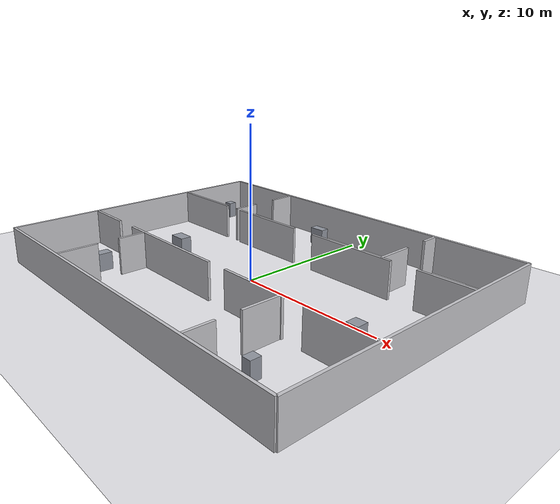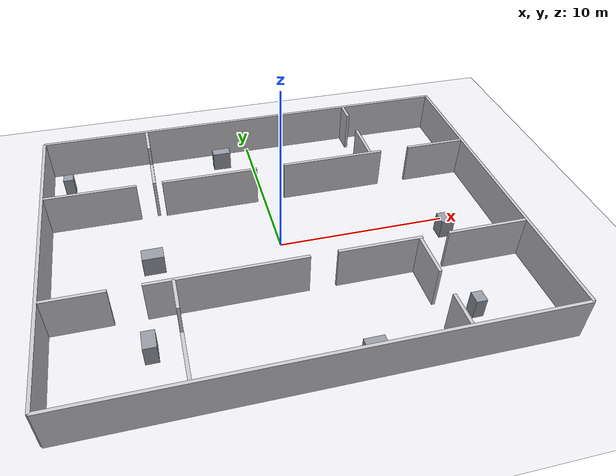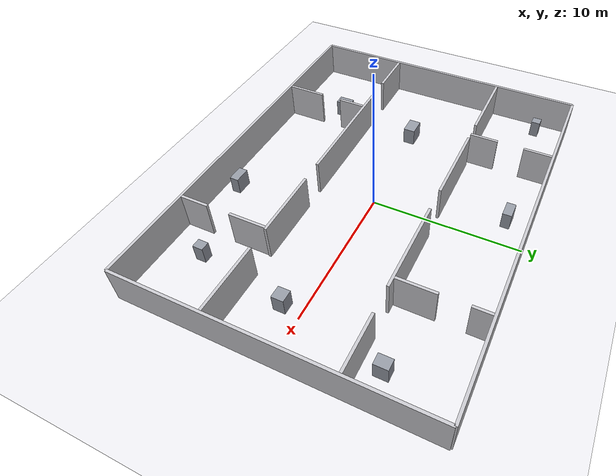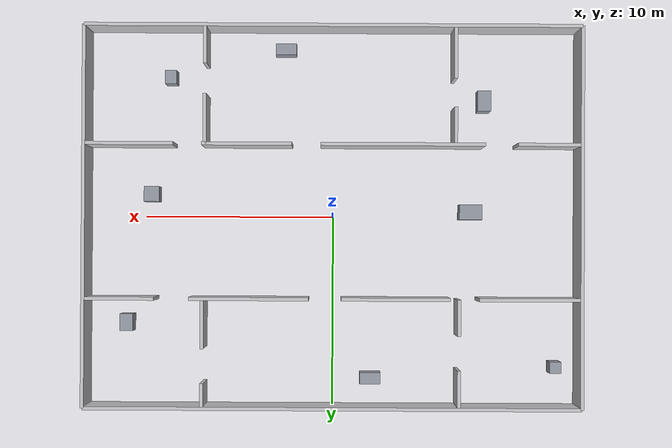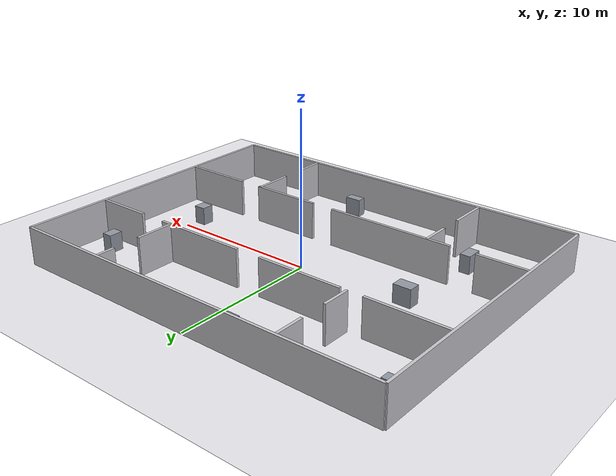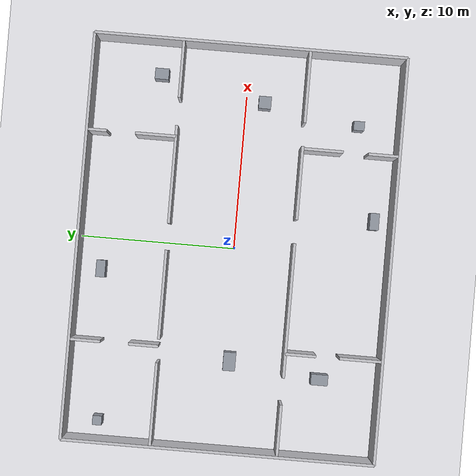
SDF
<?xml version="1.0"?>
<sdf version="1.9"><world name="new_room_world">
<plugin filename="gz-sim-physics-system" name="gz::sim::systems::Physics"/><plugin filename="gz-sim-user-commands-system" name="gz::sim::systems::UserCommands"/><plugin filename="gz-sim-scene-broadcaster-system" name="gz::sim::systems::SceneBroadcaster"/><plugin filename="gz-sim-sensors-system" name="gz::sim::systems::Sensors"><render_engine>ogre2</render_engine></plugin><plugin filename="gz-sim-imu-system" name="gz::sim::systems::Imu"/>
<physics name="new_room_realtime" type="ignored"><max_step_size>0.001</max_step_size><real_time_factor>1</real_time_factor></physics><gravity>0 0 -9.8</gravity><scene><ambient>0.85 0.85 0.87 1</ambient><background>0.68 0.68 0.71 1</background><shadows>false</shadows></scene><light name="sun" type="directional"><cast_shadows>false</cast_shadows><pose>0 0 10 0 0 0</pose><diffuse>0.95 0.95 0.95 1</diffuse><direction>-0.3 0.2 -1</direction></light>
<model name="new_room_ground"><static>true</static><link name="ground_link"><collision name="ground_collision"><geometry><plane><normal>0 0 1</normal><size>40 32</size></plane></geometry></collision><visual name="ground_visual"><geometry><plane><normal>0 0 1</normal><size>40 32</size></plane></geometry><material><ambient>0.92 0.92 0.94 1</ambient><diffuse>0.92 0.92 0.94 1</diffuse></material></visual></link></model>
<model name="mini_hospital_structure"><static>true</static><link name="structure">
<collision name="mx048_c000"><pose>0 10 1.25 0 0 0</pose><geometry><box><size>26 0.18 2.5</size></box></geometry></collision><visual name="mx048_v000"><pose>0 10 1.25 0 0 0</pose><geometry><box><size>26 0.18 2.5</size></box></geometry><material><ambient>0.78 0.78 0.80 1</ambient><diffuse>0.78 0.78 0.80 1</diffuse></material></visual>
<collision name="mx048_c001"><pose>0 -10 1.25 0 0 0</pose><geometry><box><size>26 0.18 2.5</size></box></geometry></collision><visual name="mx048_v001"><pose>0 -10 1.25 0 0 0</pose><geometry><box><size>26 0.18 2.5</size></box></geometry><material><ambient>0.78 0.78 0.80 1</ambient><diffuse>0.78 0.78 0.80 1</diffuse></material></visual>
<collision name="mx048_c002"><pose>-13 0 1.25 0 0 0</pose><geometry><box><size>0.18 20 2.5</size></box></geometry></collision><visual name="mx048_v002"><pose>-13 0 1.25 0 0 0</pose><geometry><box><size>0.18 20 2.5</size></box></geometry><material><ambient>0.78 0.78 0.80 1</ambient><diffuse>0.78 0.78 0.80 1</diffuse></material></visual>
<collision name="mx048_c003"><pose>13 0 1.25 0 0 0</pose><geometry><box><size>0.18 20 2.5</size></box></geometry></collision><visual name="mx048_v003"><pose>13 0 1.25 0 0 0</pose><geometry><box><size>0.18 20 2.5</size></box></geometry><material><ambient>0.78 0.78 0.80 1</ambient><diffuse>0.78 0.78 0.80 1</diffuse></material></visual>
<collision name="mx048_c004"><pose>-10.28 4.3 1.25 0 0 0</pose><geometry><box><size>5.26 0.18 2.5</size></box></geometry></collision><visual name="mx048_v004"><pose>-10.28 4.3 1.25 0 0 0</pose><geometry><box><size>5.26 0.18 2.5</size></box></geometry><material><ambient>0.78 0.78 0.80 1</ambient><diffuse>0.78 0.78 0.80 1</diffuse></material></visual>
<collision name="mx048_c005"><pose>-3.3 4.3 1.25 0 0 0</pose><geometry><box><size>5.7 0.18 2.5</size></box></geometry></collision><visual name="mx048_v005"><pose>-3.3 4.3 1.25 0 0 0</pose><geometry><box><size>5.7 0.18 2.5</size></box></geometry><material><ambient>0.78 0.78 0.80 1</ambient><diffuse>0.78 0.78 0.80 1</diffuse></material></visual>
<collision name="mx048_c006"><pose>4.375 4.3 1.25 0 0 0</pose><geometry><box><size>6.25 0.18 2.5</size></box></geometry></collision><visual name="mx048_v006"><pose>4.375 4.3 1.25 0 0 0</pose><geometry><box><size>6.25 0.18 2.5</size></box></geometry><material><ambient>0.78 0.78 0.80 1</ambient><diffuse>0.78 0.78 0.80 1</diffuse></material></visual>
<collision name="mx048_c007"><pose>11.105 4.3 1.25 0 0 0</pose><geometry><box><size>3.61 0.18 2.5</size></box></geometry></collision><visual name="mx048_v007"><pose>11.105 4.3 1.25 0 0 0</pose><geometry><box><size>3.61 0.18 2.5</size></box></geometry><material><ambient>0.78 0.78 0.80 1</ambient><diffuse>0.78 0.78 0.80 1</diffuse></material></visual>
<collision name="mx048_c008"><pose>-11.28 -3.8 1.25 0 0 0</pose><geometry><box><size>3.26 0.18 2.5</size></box></geometry></collision><visual name="mx048_v008"><pose>-11.28 -3.8 1.25 0 0 0</pose><geometry><box><size>3.26 0.18 2.5</size></box></geometry><material><ambient>0.78 0.78 0.80 1</ambient><diffuse>0.78 0.78 0.80 1</diffuse></material></visual>
<collision name="mx048_c009"><pose>-3.65 -3.8 1.25 0 0 0</pose><geometry><box><size>8.6 0.18 2.5</size></box></geometry></collision><visual name="mx048_v009"><pose>-3.65 -3.8 1.25 0 0 0</pose><geometry><box><size>8.6 0.18 2.5</size></box></geometry><material><ambient>0.78 0.78 0.80 1</ambient><diffuse>0.78 0.78 0.80 1</diffuse></material></visual>
<collision name="mx048_c010"><pose>4.5 -3.8 1.25 0 0 0</pose><geometry><box><size>4.7 0.18 2.5</size></box></geometry></collision><visual name="mx048_v010"><pose>4.5 -3.8 1.25 0 0 0</pose><geometry><box><size>4.7 0.18 2.5</size></box></geometry><material><ambient>0.78 0.78 0.80 1</ambient><diffuse>0.78 0.78 0.80 1</diffuse></material></visual>
<collision name="mx048_c011"><pose>10.63 -3.8 1.25 0 0 0</pose><geometry><box><size>4.56 0.18 2.5</size></box></geometry></collision><visual name="mx048_v011"><pose>10.63 -3.8 1.25 0 0 0</pose><geometry><box><size>4.56 0.18 2.5</size></box></geometry><material><ambient>0.78 0.78 0.80 1</ambient><diffuse>0.78 0.78 0.80 1</diffuse></material></visual>
<collision name="mx048_c012"><pose>-6.6 5.25 1.25 0 0 0</pose><geometry><box><size>0.18 1.9 2.5</size></box></geometry></collision><visual name="mx048_v012"><pose>-6.6 5.25 1.25 0 0 0</pose><geometry><box><size>0.18 1.9 2.5</size></box></geometry><material><ambient>0.78 0.78 0.80 1</ambient><diffuse>0.78 0.78 0.80 1</diffuse></material></visual>
<collision name="mx048_c013"><pose>-6.6 8.955 1.25 0 0 0</pose><geometry><box><size>0.18 1.91 2.5</size></box></geometry></collision><visual name="mx048_v013"><pose>-6.6 8.955 1.25 0 0 0</pose><geometry><box><size>0.18 1.91 2.5</size></box></geometry><material><ambient>0.78 0.78 0.80 1</ambient><diffuse>0.78 0.78 0.80 1</diffuse></material></visual>
<collision name="mx048_c014"><pose>6.8 5.6 1.25 0 0 0</pose><geometry><box><size>0.18 2.6 2.5</size></box></geometry></collision><visual name="mx048_v014"><pose>6.8 5.6 1.25 0 0 0</pose><geometry><box><size>0.18 2.6 2.5</size></box></geometry><material><ambient>0.78 0.78 0.80 1</ambient><diffuse>0.78 0.78 0.80 1</diffuse></material></visual>
<collision name="mx048_c015"><pose>6.8 9.305 1.25 0 0 0</pose><geometry><box><size>0.18 1.21 2.5</size></box></geometry></collision><visual name="mx048_v015"><pose>6.8 9.305 1.25 0 0 0</pose><geometry><box><size>0.18 1.21 2.5</size></box></geometry><material><ambient>0.78 0.78 0.80 1</ambient><diffuse>0.78 0.78 0.80 1</diffuse></material></visual>
<collision name="mx048_c016"><pose>-6.4 -8.58 1.25 0 0 0</pose><geometry><box><size>0.18 2.66 2.5</size></box></geometry></collision><visual name="mx048_v016"><pose>-6.4 -8.58 1.25 0 0 0</pose><geometry><box><size>0.18 2.66 2.5</size></box></geometry><material><ambient>0.78 0.78 0.80 1</ambient><diffuse>0.78 0.78 0.80 1</diffuse></material></visual>
<collision name="mx048_c017"><pose>-6.4 -4.775 1.25 0 0 0</pose><geometry><box><size>0.18 1.95 2.5</size></box></geometry></collision><visual name="mx048_v017"><pose>-6.4 -4.775 1.25 0 0 0</pose><geometry><box><size>0.18 1.95 2.5</size></box></geometry><material><ambient>0.78 0.78 0.80 1</ambient><diffuse>0.78 0.78 0.80 1</diffuse></material></visual>
<collision name="mx048_c018"><pose>6.7 -8.955 1.25 0 0 0</pose><geometry><box><size>0.18 1.91 2.5</size></box></geometry></collision><visual name="mx048_v018"><pose>6.7 -8.955 1.25 0 0 0</pose><geometry><box><size>0.18 1.91 2.5</size></box></geometry><material><ambient>0.78 0.78 0.80 1</ambient><diffuse>0.78 0.78 0.80 1</diffuse></material></visual>
<collision name="mx048_c019"><pose>6.7 -5.1 1.25 0 0 0</pose><geometry><box><size>0.18 2.6 2.5</size></box></geometry></collision><visual name="mx048_v019"><pose>6.7 -5.1 1.25 0 0 0</pose><geometry><box><size>0.18 2.6 2.5</size></box></geometry><material><ambient>0.78 0.78 0.80 1</ambient><diffuse>0.78 0.78 0.80 1</diffuse></material></visual>
<collision name="mx048_c020"><pose>-11.8 7.9 0.6 0 0 0</pose><geometry><box><size>0.6 0.6 1.2</size></box></geometry></collision><visual name="mx048_v020"><pose>-11.8 7.9 0.6 0 0 0</pose><geometry><box><size>0.6 0.6 1.2</size></box></geometry><material><ambient>0.58 0.60 0.64 1</ambient><diffuse>0.58 0.60 0.64 1</diffuse></material></visual>
<collision name="mx048_c021"><pose>-2 8.5 0.6 0 0 0</pose><geometry><box><size>1.1 0.6 1.2</size></box></geometry></collision><visual name="mx048_v021"><pose>-2 8.5 0.6 0 0 0</pose><geometry><box><size>1.1 0.6 1.2</size></box></geometry><material><ambient>0.58 0.60 0.64 1</ambient><diffuse>0.58 0.60 0.64 1</diffuse></material></visual>
<collision name="mx048_c022"><pose>10.9 5.6 0.6 0 0 0</pose><geometry><box><size>0.7 0.9 1.2</size></box></geometry></collision><visual name="mx048_v022"><pose>10.9 5.6 0.6 0 0 0</pose><geometry><box><size>0.7 0.9 1.2</size></box></geometry><material><ambient>0.58 0.60 0.64 1</ambient><diffuse>0.58 0.60 0.64 1</diffuse></material></visual>
<collision name="mx048_c023"><pose>-8 -6.2 0.6 0 0 0</pose><geometry><box><size>0.7 1.1 1.2</size></box></geometry></collision><visual name="mx048_v023"><pose>-8 -6.2 0.6 0 0 0</pose><geometry><box><size>0.7 1.1 1.2</size></box></geometry><material><ambient>0.58 0.60 0.64 1</ambient><diffuse>0.58 0.60 0.64 1</diffuse></material></visual>
<collision name="mx048_c024"><pose>2.5 -8.9 0.6 0 0 0</pose><geometry><box><size>1.1 0.6 1.2</size></box></geometry></collision><visual name="mx048_v024"><pose>2.5 -8.9 0.6 0 0 0</pose><geometry><box><size>1.1 0.6 1.2</size></box></geometry><material><ambient>0.58 0.60 0.64 1</ambient><diffuse>0.58 0.60 0.64 1</diffuse></material></visual>
<collision name="mx048_c025"><pose>8.6 -7.4 0.6 0 0 0</pose><geometry><box><size>0.6 0.7 1.2</size></box></geometry></collision><visual name="mx048_v025"><pose>8.6 -7.4 0.6 0 0 0</pose><geometry><box><size>0.6 0.7 1.2</size></box></geometry><material><ambient>0.58 0.60 0.64 1</ambient><diffuse>0.58 0.60 0.64 1</diffuse></material></visual>
<collision name="mx048_c026"><pose>-7.3 -0.3 0.6 0 0 0</pose><geometry><box><size>1.2 0.8 1.2</size></box></geometry></collision><visual name="mx048_v026"><pose>-7.3 -0.3 0.6 0 0 0</pose><geometry><box><size>1.2 0.8 1.2</size></box></geometry><material><ambient>0.58 0.60 0.64 1</ambient><diffuse>0.58 0.60 0.64 1</diffuse></material></visual>
<collision name="mx048_c027"><pose>9.6 -1.2 0.6 0 0 0</pose><geometry><box><size>0.8 0.8 1.2</size></box></geometry></collision><visual name="mx048_v027"><pose>9.6 -1.2 0.6 0 0 0</pose><geometry><box><size>0.8 0.8 1.2</size></box></geometry><material><ambient>0.58 0.60 0.64 1</ambient><diffuse>0.58 0.60 0.64 1</diffuse></material></visual>
</link></model></world></sdf>
